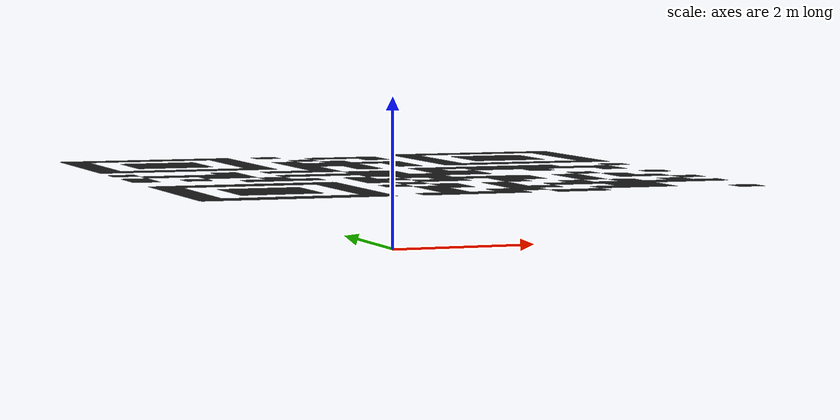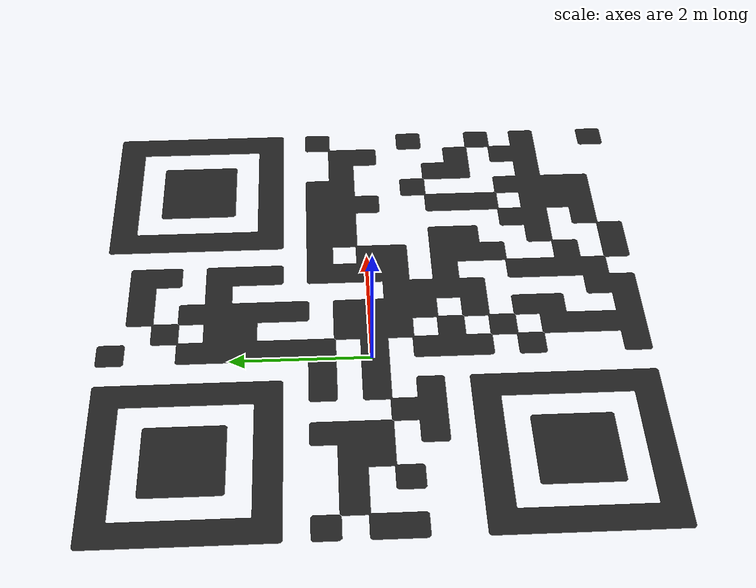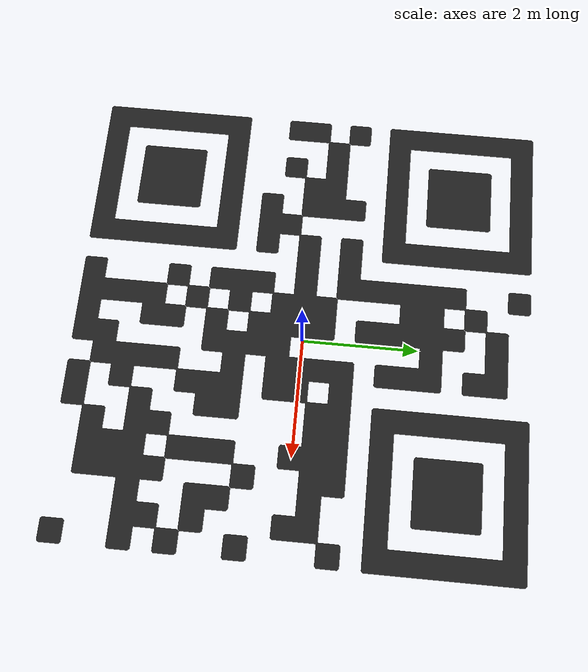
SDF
<?xml version="1.0" ?>
<sdf version="1.6">
  <model name="testucusu_m">
    <pose>0 0 1 0 0 0</pose>
    <static>true</static>
    <link name="link">
      <visual name="visual">
        <geometry>
          <mesh>
            <scale>10 10 0.000001</scale>
            <uri>model://QR_06/meshes/testucusu_m.stl</uri>
          </mesh>
        </geometry>
        <material>
          <script>
            <name>Gazebo/Black</name>
          </script>
        </material>
      </visual>
    </link>
  </model>
</sdf>
